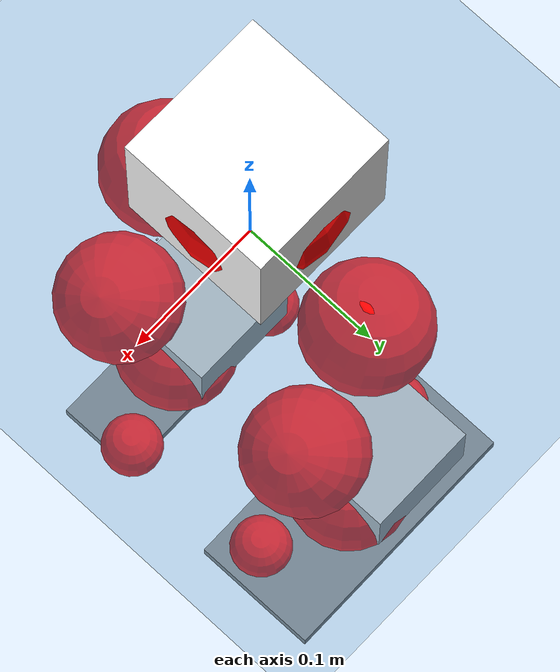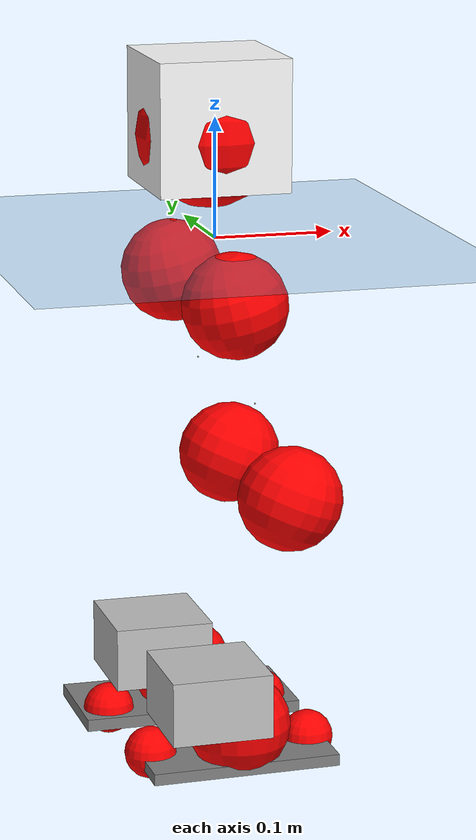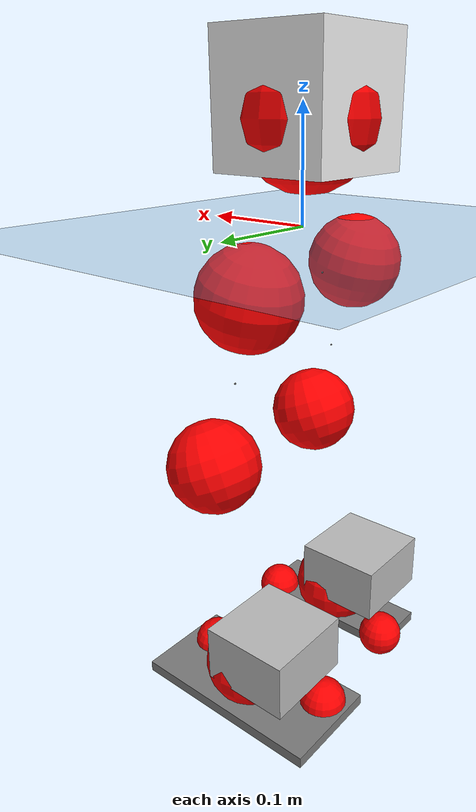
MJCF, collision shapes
<mujoco model="pi_12dof_release_v1">
  <compiler angle="radian" assetdir="assets" balanceinertia="true" inertiafromgeom="false"/>

  <option timestep="0.005" density="1.2" viscosity="2e-05"/>

  <size nkey="1"/>

  <visual>
    <quality shadowsize="8192"/>
    <map shadowclip="0.5"/>
  </visual>

  <default>
    <default class="/">
      <joint armature="0.01" damping="0.01" frictionloss="0.01"/>
      <geom contype="0" conaffinity="0" group="1" solref="-1000 -80"/>
      <site size="0.01 0.005 0.005" group="5"/>
      <general forcelimited="true" biastype="affine" gainprm="20" biasprm="0 -20 -0.5"/>
      <default class="foot">
        <geom size="0.0845 0.036 0.005" type="box" condim="6" group="4" priority="1" friction="0.9 0.2 0.2" solimp="0.015 1 0.005"/>
      </default>
      <default class="reward_collision_sphere">
        <geom group="5" rgba="1 0 0 1"/>
      </default>
    </default>
  </default>

  <asset>
    <texture type="skybox" colorspace="auto" name="//unnamed_texture_0" builtin="gradient" rgb1="0.95 0.95 0.95" rgb2="0.95 0.95 0.95" width="100" height="600"/>
    <texture type="2d" colorspace="auto" name="texplane" builtin="checker" rgb1="0.345 0.575 0.748" rgb2="0.345 0.575 0.748" markrgb="1 1 1" width="512" height="512"/>
    <material name="MatPlane" class="/" texture="texplane" texuniform="true" texrepeat="2 2" specular="0.9"/>
    <mesh name="baselink_1" class="/" file="baselink_1.STL"/>
    <mesh name="r_hip_pitch_link" class="/" file="r_hip_pitch_link.STL"/>
    <mesh name="r_hip_roll_link" class="/" file="r_hip_roll_link.STL"/>
    <mesh name="r_thigh_link" class="/" file="r_thigh_link.STL"/>
    <mesh name="r_calf_link" class="/" file="r_calf_link.STL"/>
    <mesh name="r_ankle_pitch_link" class="/" file="r_ankle_pitch_link.STL"/>
    <mesh name="r_ankle_roll_link" class="/" file="r_ankle_roll_link.STL"/>
    <mesh name="l_hip_pitch_link" class="/" file="l_hip_pitch_link.STL"/>
    <mesh name="l_hip_roll_link" class="/" file="l_hip_roll_link.STL"/>
    <mesh name="l_thigh_link" class="/" file="l_thigh_link.STL"/>
    <mesh name="l_calf_link" class="/" file="l_calf_link.STL"/>
    <mesh name="l_ankle_pitch_link" class="/" file="l_ankle_pitch_link.STL"/>
    <mesh name="l_ankle_roll_link" class="/" file="l_ankle_roll_link.STL"/>
  </asset>

  <worldbody>
    <geom name="floor" class="/" size="100 100 0.125" type="plane" group="0" material="MatPlane"/>
    <light name="toplight_shadow" class="/" pos="0 0 5" dir="0.0990148 0.0990148 -0.990148" type="directional" ambient="0.04 0.04 0.04" diffuse="0.55 0.55 0.55" specular="0.12 0.12 0.12"/>
    <light name="toplight_fill" class="/" pos="0 0 5" dir="0.0990148 0.0990148 -0.990148" type="directional" castshadow="false" ambient="0.04 0.04 0.04" diffuse="0.3 0.3 0.3" specular="0.08 0.08 0.08"/>
    <body name="trunk" pos="-0.0051376 0.000731637 -0.00184569" quat="1 0.000124051 -0.000842386 -0.000472872">
      <inertial pos="0.00208122 -0.00385844 0.0508603" quat="0.696638 0.0109428 0.0121006 0.717238" mass="2.86803" diaginertia="0.00943698 0.00816978 0.0130218"/>
      <joint name="//unnamed_joint_0" type="free"/>
      <geom name="//unnamed_geom_1" class="/" type="mesh" density="0" rgba="1 1 1 1" mesh="baselink_1"/>
      <geom name="//unnamed_geom_2" class="/" size="0.0545398 0.0545398 0.0545398" pos="0 0 0.100788" type="box" rgba="1 1 1 1"/>
      <geom name="//unnamed_geom_3" class="reward_collision_sphere" size="0.0599938" pos="0 0 0.0881895"/>
      <site name="imu" class="/" pos="0.00866994 -0.0112946 0.032881" size="0.010908"/>
      <camera name="track" class="/" pos="0 -1.9909 0" quat="0.707107 0.707107 0 0" mode="trackcom"/>
      <camera name="ego_camera" class="/" pos="0.0762818 0 0.226773" quat="-0.5 -0.5 0.5 0.5"/>
      <body name="r_hip_pitch_link" pos="-0.000881769 -0.0221401 -0.0402902" quat="0.992229 0.000610373 -0.124405 0.00206187">
        <inertial pos="0.00697289 -0.0559154 0.000109372" quat="-0.0190162 0.704455 -0.0281871 0.708934" mass="0.460674" diaginertia="0.000113282 9.76436e-05 0.000252508"/>
        <joint name="r_hip_pitch_joint" class="/" pos="0 0 0" axis="0.00822094 -0.999786 0.0190091" range="-1.86876 1.20797" armature="0.0107358" damping="0" frictionloss="0.0109641"/>
        <geom name="//unnamed_geom_4" class="/" type="mesh" density="0" rgba="0.75294 0.75294 0.75294 1" mesh="r_hip_pitch_link"/>
        <geom name="//unnamed_geom_5" class="/" size="0.000545398 0.000545398 0.000545398" type="box" rgba="0.75294 0.75294 0.75294 1"/>
        <body name="r_hip_roll_link" pos="0.00210432 -0.0537062 0.0010663" quat="1 -2.5491e-05 -3.32231e-05 -0.000183094">
          <inertial pos="-0.00104134 0.00136758 -0.0695466" quat="0.705865 -0.0792743 -0.0824425 0.699052" mass="0.506088" diaginertia="0.000362565 0.000267175 0.00039698"/>
          <joint name="r_hip_roll_joint" class="/" pos="0 0 0" axis="-0.999788 -0.019012 -0.00788888" range="-0.0714311 0.398571" armature="0.0110502" damping="0.0106542" frictionloss="0.0124246"/>
          <geom name="//unnamed_geom_6" class="/" type="mesh" density="0" rgba="0.75294 0.75294 0.75294 1" mesh="r_hip_roll_link"/>
          <geom name="//unnamed_geom_7" class="/" size="0.000545398 0.000545398 0.000545398" type="box" rgba="0.75294 0.75294 0.75294 1"/>
          <geom name="//unnamed_geom_8" class="reward_collision_sphere" size="0.0436318"/>
          <body name="r_thigh_link" pos="-0.00237336 0.00760578 -0.0867521" quat="0.999999 -0.00115653 0.000543889 0.000505886">
            <inertial pos="-4.43922e-05 -0.00112413 -0.0590461" quat="0.742815 0.668886 -0.00378403 0.0283319" mass="0.141092" diaginertia="0.000138953 9.03429e-05 0.000190332"/>
            <joint name="r_thigh_joint" class="/" pos="0 0 0" axis="-0.000535464 0.00524984 -0.999986" stiffness="0.0353897" range="-0.355401 0.465449" armature="0.0107731" damping="0.0101755" frictionloss="0.0109"/>
            <geom name="//unnamed_geom_9" class="/" type="mesh" density="0" rgba="0.75294 0.75294 0.75294 1" mesh="r_thigh_link"/>
            <geom name="//unnamed_geom_10" class="/" size="0.000545398 0.000545398 0.000545398" type="box" rgba="0.75294 0.75294 0.75294 1"/>
            <body name="r_calf_link" pos="0.00717027 -0.00961903 -0.0844644" quat="0.947944 -0.000377466 0.318437 9.71091e-05">
              <inertial pos="-0.00707471 0.000863894 -0.0821385" quat="0.999945 -0.00730582 0.00643845 0.00376591" mass="1.00019" diaginertia="0.00345689 0.00323049 0.000510404"/>
              <joint name="r_calf_joint" class="/" pos="0 0 0" axis="0.00195766 -0.999506 0.0313788" stiffness="0.00226746" range="-1.69228 0.649869" armature="0.0106918" damping="0" frictionloss="0.00967835"/>
              <geom name="//unnamed_geom_11" class="/" type="mesh" density="0" rgba="0.75294 0.75294 0.75294 1" mesh="r_calf_link"/>
              <geom name="//unnamed_geom_12" class="/" size="0.000545398 0.000545398 0.000545398" type="box" rgba="0.75294 0.75294 0.75294 1"/>
              <geom name="//unnamed_geom_13" class="reward_collision_sphere" size="0.0436318"/>
              <body name="r_ankle_pitch_link" pos="0.00125602 0.00391076 -0.178003" quat="0.980045 -2.47377e-05 -0.198774 2.45044e-05">
                <inertial pos="0.00527503 -0.0044515 0.00155432" quat="1.88584e-05 0.705925 -0.00036124 0.708286" mass="0.232369" diaginertia="0.000331878 0.000226453 0.000384655"/>
                <joint name="r_ankle_pitch_joint" class="/" pos="0 0 0" axis="0.00946719 -0.999952 0.00236897" range="-1.29004 0.490973" armature="0.0130731" damping="0.00813152" frictionloss="0.0123619"/>
                <geom name="//unnamed_geom_14" class="/" type="mesh" density="0" rgba="0.75294 0.75294 0.75294 1" mesh="r_ankle_pitch_link"/>
                <geom name="//unnamed_geom_15" class="/" size="0.0425411 0.0436318 0.0272699" type="box" rgba="0.75294 0.75294 0.75294 1"/>
                <body name="r_ankle_roll_link" pos="0.0771849 0.00446946 -0.00463692" quat="0.999994 0.00157214 -0.00230534 0.00204681">
                  <inertial pos="-0.0322605 0.00219257 -0.0224533" quat="0.560206 0.439444 0.427637 0.556942" mass="0.689193" diaginertia="0.00118999 0.000923378 0.000797787"/>
                  <joint name="r_ankle_roll_joint" class="/" pos="0 0 0" axis="-0.999381 0.0207028 0.028437" stiffness="0.00737967" range="-0.156564 0.107954" armature="0.0119025" damping="0" frictionloss="0.00966977"/>
                  <geom name="//unnamed_geom_16" class="/" type="mesh" density="0" rgba="0.75294 0.75294 0.75294 1" mesh="r_ankle_roll_link"/>
                  <geom name="//unnamed_geom_17" class="/" type="mesh" rgba="0.75294 0.75294 0.75294 1" mesh="r_ankle_roll_link"/>
                  <geom name="right_foot" class="foot" size="0.0798447 0.030461 0.00488656" pos="-0.0518716 0 -0.0554334"/>
                  <geom name="//unnamed_geom_19" class="reward_collision_sphere" size="0.0436318" pos="-0.0508545 0 -0.025197"/>
                  <geom name="//unnamed_geom_20" class="reward_collision_sphere" size="0.0218159" pos="0.0152564 0.019909 -0.050394"/>
                  <geom name="//unnamed_geom_21" class="reward_collision_sphere" size="0.0218159" pos="-0.122051 0.019909 -0.050394"/>
                  <site name="right_foot" class="foot" pos="-0.0518716 0 -0.0554334" size="0.010908"/>
                </body>
              </body>
            </body>
          </body>
        </body>
      </body>
      <body name="l_hip_pitch_link" pos="-0.00848473 0.0276816 -0.0417031" quat="0.992272 -0.000136855 -0.124079 0.000231936">
        <inertial pos="-0.00533984 0.0618508 -0.000636746" quat="-0.0452043 0.720822 0.0346141 0.690778" mass="0.509861" diaginertia="0.000137346 0.000102448 0.000339678"/>
        <joint name="l_hip_pitch_joint" class="/" pos="0 0 0" axis="-0.00272176 0.999197 -0.0399769" stiffness="0.0282288" range="-1.13272 1.80389" armature="0.0143703" damping="0.0275548" frictionloss="0.0107821"/>
        <geom name="//unnamed_geom_22" class="/" type="mesh" density="0" rgba="0.75294 0.75294 0.75294 1" mesh="l_hip_pitch_link"/>
        <geom name="//unnamed_geom_23" class="/" size="0.000545398 0.000545398 0.000545398" type="box" rgba="0.75294 0.75294 0.75294 1"/>
        <body name="l_hip_roll_link" pos="-0.000903887 0.0568243 -3.99602e-05" quat="1 0.000136515 -0.000321892 -0.000242147">
          <inertial pos="0.000801381 -0.00632323 -0.0758973" quat="0.70966 -0.0695202 -0.0838701 0.696072" mass="0.499618" diaginertia="0.000359917 0.000267498 0.000430292"/>
          <joint name="l_hip_roll_joint" class="/" pos="0 0 0" axis="-0.999993 0.000250936 -0.00385173" stiffness="0.00904263" range="-0.550233 0.110403" armature="0.00846212" damping="0.0128373" frictionloss="0.0115137"/>
          <geom name="//unnamed_geom_24" class="/" type="mesh" density="0" rgba="0.75294 0.75294 0.75294 1" mesh="l_hip_roll_link"/>
          <geom name="//unnamed_geom_25" class="/" size="0.000545398 0.000545398 0.000545398" type="box" rgba="0.75294 0.75294 0.75294 1"/>
          <geom name="//unnamed_geom_26" class="reward_collision_sphere" size="0.0436318"/>
          <body name="l_thigh_link" pos="0.00197121 -0.0042795 -0.0798974" quat="0.999993 -0.000114746 0.00249043 0.00273135">
            <inertial pos="0.00308589 -0.00191314 -0.0680735" quat="0.676899 0.736068 0.00320104 -0.0011443" mass="0.155887" diaginertia="0.000134106 9.21037e-05 0.0001853"/>
            <joint name="l_thigh_joint" class="/" pos="0 0 0" axis="-0.00408338 0.00453031 -0.999981" stiffness="0.00293266" range="-0.47774 0.243008" armature="0.0105975" damping="0.0224272" frictionloss="0.0120375"/>
            <geom name="//unnamed_geom_27" class="/" type="mesh" density="0" rgba="0.75294 0.75294 0.75294 1" mesh="l_thigh_link"/>
            <geom name="//unnamed_geom_28" class="/" size="0.000545398 0.000545398 0.000545398" type="box" rgba="0.75294 0.75294 0.75294 1"/>
            <body name="l_calf_link" pos="0.00627863 0.000371806 -0.0912022" quat="0.947491 -0.000229182 0.319781 6.69217e-05">
              <inertial pos="-0.00248932 0.00308953 -0.0878907" quat="0.999349 -0.00316927 -0.0100616 0.0345092" mass="1.02726" diaginertia="0.00367293 0.00324283 0.000527442"/>
              <joint name="l_calf_joint" class="/" pos="0 0 0" axis="-0.0249304 0.999687 0.00187124" stiffness="0.0079438" range="-0.698893 1.66607" armature="0.0106707" damping="0.0165973" frictionloss="0.0132213"/>
              <geom name="//unnamed_geom_29" class="/" type="mesh" density="0" rgba="0.75294 0.75294 0.75294 1" mesh="l_calf_link"/>
              <geom name="//unnamed_geom_30" class="/" size="0.000545398 0.000545398 0.000545398" type="box" rgba="0.75294 0.75294 0.75294 1"/>
              <geom name="//unnamed_geom_31" class="reward_collision_sphere" size="0.0436318"/>
              <body name="l_ankle_pitch_link" pos="0.00231148 0.00125515 -0.181679" quat="0.980043 -0.000415012 -0.198784 0.000153143">
                <inertial pos="0.00693695 -0.00254753 0.00143734" quat="0.00849179 0.725161 0.0269726 0.687999" mass="0.223351" diaginertia="0.000330066 0.000206062 0.000344644"/>
                <joint name="l_ankle_pitch_joint" class="/" pos="0 0 0" axis="0.00410589 0.999986 -0.00329501" stiffness="0.00194007" range="-0.550653 1.26611" armature="0.00990728" damping="0.0240925" frictionloss="0.0121008"/>
                <geom name="//unnamed_geom_32" class="/" type="mesh" density="0" rgba="0.75294 0.75294 0.75294 1" mesh="l_ankle_pitch_link"/>
                <geom name="//unnamed_geom_33" class="/" size="0.0425411 0.0436318 0.0272699" type="box" rgba="0.75294 0.75294 0.75294 1"/>
                <body name="l_ankle_roll_link" pos="0.0778706 0.00188917 -0.000398627" quat="1 0.000120019 -0.000381627 -1.0337e-05">
                  <inertial pos="-0.0193168 0.00718495 -0.0243714" quat="0.562616 0.427716 0.439759 0.554196" mass="0.620005" diaginertia="0.00123193 0.000924851 0.00086761"/>
                  <joint name="l_ankle_roll_joint" class="/" pos="0 0 0" axis="-0.999967 0.00797956 0.00178298" range="-0.116411 0.186986" armature="0.012233" damping="0" frictionloss="0.00822584"/>
                  <geom name="//unnamed_geom_34" class="/" type="mesh" density="0" rgba="0.75294 0.75294 0.75294 1" mesh="l_ankle_roll_link"/>
                  <geom name="//unnamed_geom_35" class="/" type="mesh" rgba="0.75294 0.75294 0.75294 1" mesh="l_ankle_roll_link"/>
                  <geom name="left_foot" class="foot" size="0.0952976 0.0469176 0.00521874" pos="-0.0518716 0 -0.0554334"/>
                  <geom name="//unnamed_geom_37" class="reward_collision_sphere" size="0.0436318" pos="-0.0508545 0 -0.025197"/>
                  <geom name="//unnamed_geom_38" class="reward_collision_sphere" size="0.0218159" pos="0.0152564 -0.019909 -0.050394"/>
                  <geom name="//unnamed_geom_39" class="reward_collision_sphere" size="0.0218159" pos="-0.122051 -0.019909 -0.050394"/>
                  <site name="left_foot" class="foot" pos="-0.0518716 0 -0.0554334" size="0.010908"/>
                </body>
              </body>
            </body>
          </body>
        </body>
      </body>
    </body>
  </worldbody>

  <contact>
    <pair class="/" geom1="floor" geom2="right_foot" name="//unnamed_contact_1"/>
    <pair class="/" geom1="floor" geom2="left_foot" name="//unnamed_contact_0"/>
  </contact>

  <actuator>
    <general name="r_hip_pitch_joint" class="/" joint="r_hip_pitch_joint" forcerange="-23.146 23.146" gainprm="23.0155" biasprm="0 -23.0155 -0.549309"/>
    <general name="r_hip_roll_joint" class="/" joint="r_hip_roll_joint" forcerange="-18.169 18.169" gainprm="23.0155" biasprm="0 -23.0155 -0.549309"/>
    <general name="r_thigh_joint" class="/" joint="r_thigh_joint" forcerange="-22.3178 22.3178" gainprm="23.0155" biasprm="0 -23.0155 -0.549309"/>
    <general name="r_calf_joint" class="/" joint="r_calf_joint" forcerange="-17.0598 17.0598" gainprm="23.0155" biasprm="0 -23.0155 -0.549309"/>
    <general name="r_ankle_pitch_joint" class="/" joint="r_ankle_pitch_joint" forcerange="-21.312 21.312" gainprm="23.0155" biasprm="0 -23.0155 -0.549309"/>
    <general name="r_ankle_roll_joint" class="/" joint="r_ankle_roll_joint" forcerange="-24.1471 24.1471" gainprm="23.0155" biasprm="0 -23.0155 -0.549309"/>
    <general name="l_hip_pitch_joint" class="/" joint="l_hip_pitch_joint" forcerange="-22.9444 22.9444" gainprm="23.0155" biasprm="0 -23.0155 -0.549309"/>
    <general name="l_hip_roll_joint" class="/" joint="l_hip_roll_joint" forcerange="-26.6067 26.6067" gainprm="23.0155" biasprm="0 -23.0155 -0.549309"/>
    <general name="l_thigh_joint" class="/" joint="l_thigh_joint" forcerange="-23.2468 23.2468" gainprm="23.0155" biasprm="0 -23.0155 -0.549309"/>
    <general name="l_calf_joint" class="/" joint="l_calf_joint" forcerange="-22.6674 22.6674" gainprm="23.0155" biasprm="0 -23.0155 -0.549309"/>
    <general name="l_ankle_pitch_joint" class="/" joint="l_ankle_pitch_joint" forcerange="-24.7411 24.7411" gainprm="23.0155" biasprm="0 -23.0155 -0.549309"/>
    <general name="l_ankle_roll_joint" class="/" joint="l_ankle_roll_joint" forcerange="-21.7647 21.7647" gainprm="23.0155" biasprm="0 -23.0155 -0.549309"/>
  </actuator>

  <sensor>
    <gyro site="imu" name="imu_angular_velocity"/>
    <velocimeter site="imu" name="imu_linear_velocity"/>
    <framelinvel objtype="site" objname="left_foot" name="left_foot_global_linear_velocity"/>
    <framelinvel objtype="site" objname="right_foot" name="right_foot_global_linear_velocity"/>
  </sensor>

  <keyframe>
    <key name="home" qpos="0 0 0.291 1 0 0 0 0.4 0 0 -0.8 0.4 0 -0.4 0 0 0.8 -0.4 0"/>
  </keyframe>
</mujoco>
